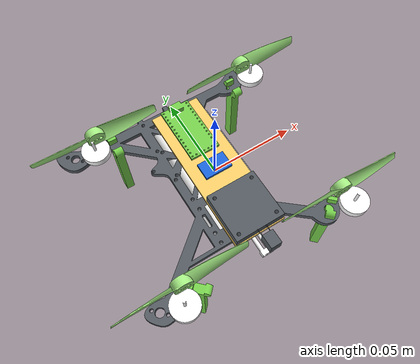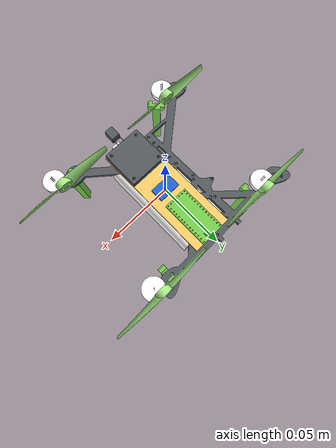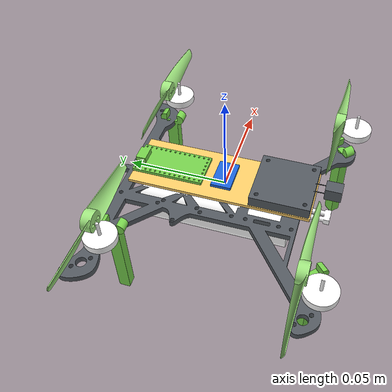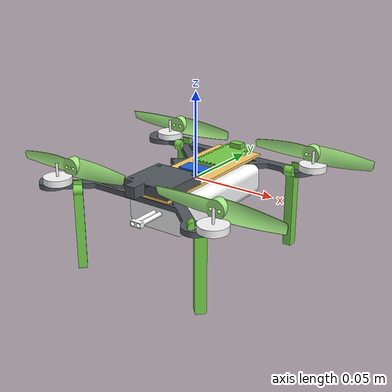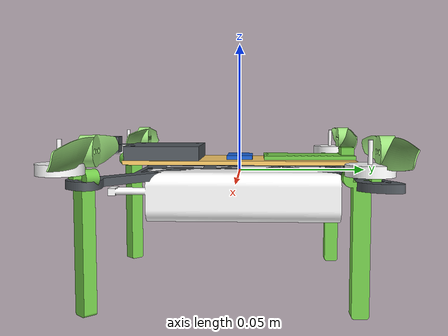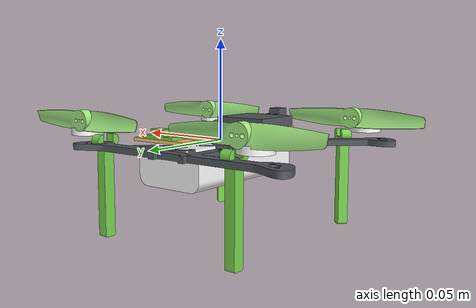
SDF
<?xml version="1.0" ?>
<sdf version='1.11'>
  <model name='drone'>
    <pose>0 0 0 0 0 0</pose>
    <link name='base_link'>
      <inertial>
        <pose frame="">0 0 0 0 0 0</pose>
        <mass>0.2034</mass>
        <inertia>
          <ixx>0.000016572*8.136</ixx>
          <ixy>0.00</ixy>
          <ixz>0.00</ixz>
          <iyy>0.000016656*8.136</iyy>
          <iyz>0.00000</iyz>
          <izz>0.000029262*8.136</izz>        i
        </inertia>
      </inertial>
      <collision name='base_link_collision'>
        <pose>0.040281999999999998 -0.0559978 -0.047511600000000001 1.5708 0 -2.3561899999999998</pose>
        <geometry>
          <mesh>
            <scale>1 1 1</scale>
            <uri>model://f_drone/assets/leg.stl</uri>
          </mesh>
        </geometry>
      </collision>
      <collision name='base_link_collision_3'>
        <pose>-0.037908999999999998 0.038994099999999997 -0.047511600000000001 1.5708 5.5511151231257827e-17 -1.5708</pose>
        <geometry>
          <mesh>
            <scale>1 1 1</scale>
            <uri>model://f_drone/assets/leg.stl</uri>
          </mesh>
        </geometry>
      </collision>
      <collision name='base_link_collision_5'>
        <pose>0.036496199999999999 0.044994100000000002 -0.047511600000000001 1.5708 -5.5511151231257827e-17 1.5708</pose>
        <geometry>
          <mesh>
            <scale>1 1 1</scale>
            <uri>model://f_drone/assets/leg.stl</uri>
          </mesh>
        </geometry>
      </collision>
      <collision name='base_link_collision_8'>
        <pose>-0.011815300000000001 -0.00082253299999999997 0 0 0 0</pose>
        <geometry>
          <box>
            <size>0.1029 0.09925 0.03</size>
          </box>
        </geometry>
      </collision>
      <collision name='base_link_collision_11'>
        <pose>-0.037236999999999999 -0.052462300000000003 -0.047511600000000001 1.5708 -2.2204460492503131e-16 -0.78539800000000004</pose>
        <geometry>
          <mesh>
            <scale>1 1 1</scale>
            <uri>model://f_drone/assets/leg.stl</uri>
          </mesh>
        </geometry>
      </collision>
      <visual name='base_link_visual'>
        <pose>0.040281999999999998 -0.0559978 -0.047511600000000001 1.5708 0 -2.3561899999999998</pose>
        <geometry>
          <mesh>
            <scale>1 1 1</scale>
            <uri>model://f_drone/assets/leg.stl</uri>
          </mesh>
        </geometry>
        <material>
          <diffuse>0.465686262 0.818627477 0.299019992 1</diffuse>
          <ambient>0.465686262 0.818627477 0.299019992 1</ambient>
        </material>
      </visual>
      <visual name='base_link_visual_1'>
        <pose>4.7435499999999997e-06 0.0015624899999999999 -0.019 0 0 0</pose>
        <geometry>
          <mesh>
            <scale>1 1 1</scale>
            <uri>model://f_drone/assets/2s_battery.stl</uri>
          </mesh>
        </geometry>
        <material>
          <diffuse>1 1 1 1</diffuse>
          <ambient>1 1 1 1</ambient>
        </material>
      </visual>
      <visual name='base_link_visual_2'>
        <pose>-0.051445299999999999 -0.0566416 0.0030000000000000001 0 0 0</pose>
        <geometry>
          <mesh>
            <scale>1 1 1</scale>
            <uri>model://f_drone/assets/motor.stl</uri>
          </mesh>
        </geometry>
        <material>
          <diffuse>1 1 1 1</diffuse>
          <ambient>1 1 1 1</ambient>
        </material>
      </visual>
      <visual name='base_link_visual_3'>
        <pose>-0.037908999999999998 0.038994099999999997 -0.047511600000000001 1.5708 5.5511151231257827e-17 -1.5708</pose>
        <geometry>
          <mesh>
            <scale>1 1 1</scale>
            <uri>model://f_drone/assets/leg.stl</uri>
          </mesh>
        </geometry>
        <material>
          <diffuse>0.465686262 0.818627477 0.299019992 1</diffuse>
          <ambient>0.465686262 0.818627477 0.299019992 1</ambient>
        </material>
      </visual>
      <visual name='base_link_visual_4'>
        <pose>4.7435499999999997e-06 0.027497000000000001 0.0045500000000000002 0 0 0</pose>
        <geometry>
          <mesh>
            <scale>1 1 1</scale>
            <uri>model://f_drone/assets/mcu.stl</uri>
          </mesh>
        </geometry>
        <material>
          <diffuse>0.465686262 0.818627477 0.299019992 1</diffuse>
          <ambient>0.465686262 0.818627477 0.299019992 1</ambient>
        </material>
      </visual>
      <visual name='base_link_visual_5'>
        <pose>0.036496199999999999 0.044994100000000002 -0.047511600000000001 1.5708 -5.5511151231257827e-17 1.5708</pose>
        <geometry>
          <mesh>
            <scale>1 1 1</scale>
            <uri>model://f_drone/assets/leg.stl</uri>
          </mesh>
        </geometry>
        <material>
          <diffuse>0.465686262 0.818627477 0.299019992 1</diffuse>
          <ambient>0.465686262 0.818627477 0.299019992 1</ambient>
        </material>
      </visual>
      <visual name='base_link_visual_6'>
        <pose>4.7435499999999997e-06 0.000103915 0.0045500000000000002 0 0 0</pose>
        <geometry>
          <mesh>
            <scale>1 1 1</scale>
            <uri>model://f_drone/assets/imu.stl</uri>
          </mesh>
        </geometry>
        <material>
          <diffuse>0.107843123 0.397058755 0.862744987 1</diffuse>
          <ambient>0.107843123 0.397058755 0.862744987 1</ambient>
        </material>
      </visual>
      <visual name='base_link_visual_7'>
        <pose>0.051454699999999999 0.042608399999999998 0.0030000000000000001 0 0 0</pose>
        <geometry>
          <mesh>
            <scale>1 1 1</scale>
            <uri>model://f_drone/assets/motor.stl</uri>
          </mesh>
        </geometry>
        <material>
          <diffuse>1 1 1 1</diffuse>
          <ambient>1 1 1 1</ambient>
        </material>
      </visual>
      <visual name='base_link_visual_8'>
        <pose>-0.011815300000000001 -0.00082253299999999997 0 0 0 0</pose>
        <geometry>
          <mesh>
            <scale>1 1 1</scale>
            <uri>model://f_drone/assets/base_link.stl</uri>
          </mesh>
        </geometry>
        <material>
          <diffuse>0.328431249 0.352941275 0.377451241 1</diffuse>
          <ambient>0.328431249 0.352941275 0.377451241 1</ambient>
        </material>
      </visual>
      <visual name='base_link_visual_9'>
        <pose>4.7435499999999997e-06 0.000103915 0.00298 0 0 0</pose>
        <geometry>
          <mesh>
            <scale>1 1 1</scale>
            <uri>model://f_drone/assets/custom_pcb.stl</uri>
          </mesh>
        </geometry>
        <material>
          <diffuse>1 0.808823764 0.411765009 1</diffuse>
          <ambient>1 0.808823764 0.411765009 1</ambient>
        </material>
      </visual>
      <visual name='base_link_visual_10'>
        <pose>-0.051445299999999999 0.042608399999999998 0.0030000000000000001 0 0 0</pose>
        <geometry>
          <mesh>
            <scale>1 1 1</scale>
            <uri>model://f_drone/assets/motor.stl</uri>
          </mesh>
        </geometry>
        <material>
          <diffuse>1 1 1 1</diffuse>
          <ambient>1 1 1 1</ambient>
        </material>
      </visual>
      <visual name='base_link_visual_11'>
        <pose>-0.037236999999999999 -0.052462300000000003 -0.047511600000000001 1.5708 -2.2204460492503131e-16 -0.78539800000000004</pose>
        <geometry>
          <mesh>
            <scale>1 1 1</scale>
            <uri>model://f_drone/assets/leg.stl</uri>
          </mesh>
        </geometry>
        <material>
          <diffuse>0.465686262 0.818627477 0.299019992 1</diffuse>
          <ambient>0.465686262 0.818627477 0.299019992 1</ambient>
        </material>
      </visual>
      <visual name='base_link_visual_12'>
        <pose>0.051454699999999999 -0.0566416 0.0030000000000000001 0 0 0</pose>
        <geometry>
          <mesh>
            <scale>1 1 1</scale>
            <uri>model://f_drone/assets/motor.stl</uri>
          </mesh>
        </geometry>
        <material>
          <diffuse>1 1 1 1</diffuse>
          <ambient>1 1 1 1</ambient>
        </material>
      </visual>
      <visual name='base_link_visual_13'>
        <pose>4.7435499999999997e-06 -0.029896099999999998 0.0045500000000000002 0 0 0</pose>
        <geometry>
          <mesh>
            <scale>1 1 1</scale>
            <uri>model://f_drone/assets/esc.stl</uri>
          </mesh>
        </geometry>
        <material>
          <diffuse>0.328431249 0.352941275 0.377451241 1</diffuse>
          <ambient>0.328431249 0.352941275 0.377451241 1</ambient>
        </material>
      </visual>
      <!-- IMU in the middle of drone-->
      <sensor name="imu_sensor" type="imu">
        <pose>0 0 0 0 0 0</pose>
        <always_on>1</always_on>
        <update_rate>1000</update_rate>
        <visualize>true</visualize>
        <topic>imu</topic>
        <imu>
          <orientation_reference_frame>
            <localization>NWU</localization>
            <custom_rpy>0 0 0</custom_rpy>
            <grav_dir_x>1 0 0</grav_dir_x>
          </orientation_reference_frame>
          <enable_orientation>true</enable_orientation>
        </imu>
      </sensor>
      <!-- Rangefinder at end of drone-->
      <sensor name='optical_flow' type='gpu_lidar'>"
          <pose relative_to='base_link'>0 0.055 -0.0045 0 1.5708 -1.5708</pose>
          <topic>radar</topic>
          <enable_metrics>false</enable_metrics>
          <update_rate>100</update_rate>
          <ray>
              <scan>
                  <horizontal>
                      <samples>10</samples>
                      <resolution>1</resolution>
                      <min_angle>-0.2186</min_angle>
                      <max_angle>0.2186</max_angle>
                  </horizontal>
                  <vertical>
                      <samples>1</samples>
                      <resolution>0.01</resolution>
                      <min_angle>0</min_angle>
                      <max_angle>0</max_angle>
                  </vertical>
              </scan>
              <range>
                <min>0.01</min>
                <max>2.0</max>
                <resolution>0.01</resolution>
              </range>
          </ray>
          <always_on>1</always_on>
          <visualize>true</visualize>
      </sensor>
    </link>
    <joint name='motor_prop_1' type='revolute'>
      <parent>base_link</parent>
      <child>prop</child>
      <axis>
        <xyz>0 0 1</xyz>
        <limit>
          <lower>-1e+16</lower>
          <upper>1e+16</upper>
          <effort>10</effort>
          <velocity>600</velocity>
        </limit>
        <dynamics>
          <spring_reference>0</spring_reference>
          <spring_stiffness>0</spring_stiffness>
        </dynamics>
        <use_parent_model_frame>1</use_parent_model_frame>
      </axis>
    </joint>
    <link name='prop'>
      <pose frame="">-0.048 0.048 0.0105 0 0 0</pose>
      <inertial>
        <pose>0 0 0 0 0 0</pose>
        <mass>0.0007</mass>
        <inertia>
          <ixx>0.000000002*61.25</ixx>
          <iyy>0.000000167*61.25</iyy>
          <izz>0.000000168*61.25</izz>
          <ixy>0</ixy>
          <ixz>0</ixz>
          <iyz>0</iyz>>
        </inertia>
      </inertial>
      <collision name='prop_collision'>
        <pose>0 0 0 3.1415899999999999 0 0</pose>
        <geometry>
          <cylinder>
            <length>0.005</length>
            <radius>0.0381</radius>
          </cylinder>
        </geometry>
      </collision>
      <visual name='prop_visual'>
        <pose>0 0 0 3.1415899999999999 0 0</pose>
        <geometry>
          <mesh>
            <scale>1 1 1</scale>
            <uri>model://f_drone/assets/prop.stl</uri>
          </mesh>
        </geometry>
        <material>
          <diffuse>0.642156243 0.921568751 0.509803772 1</diffuse>
          <ambient>0.642156243 0.921568751 0.509803772 1</ambient>
        </material>
      </visual>
    </link>
    <joint name='motor_prop_2' type='revolute'>
      <parent>base_link</parent>
      <child>prop_2</child>
      <axis>
        <xyz>0 0 1</xyz>
        <limit>
          <lower>-1e+16</lower>
          <upper>1e+16</upper>
          <effort>10</effort>
          <velocity>600</velocity>
        </limit>
        <dynamics>
          <spring_reference>0</spring_reference>
          <spring_stiffness>0</spring_stiffness>
        </dynamics>
        <use_parent_model_frame>1</use_parent_model_frame>
      </axis>
    </joint>
    <link name='prop_2'>
      <pose frame="">-0.048 -0.048 0.0105 0 0 0</pose>
      <inertial>
        <pose>0 0 0 0 0 0</pose>
        <mass>0.0007</mass>
        <inertia>
          <ixx>0.000000002*61.25</ixx>
          <iyy>0.000000167*61.25</iyy>
          <izz>0.000000168*61.25</izz>
          <ixy>0</ixy>
          <ixz>0</ixz>
          <iyz>0</iyz>>
        </inertia>
      </inertial>
      <collision name='prop_2_collision'>
        <pose>0 0 0 0 0 0</pose>
        <geometry>
          <cylinder>
            <length>0.005</length>
            <radius>0.0381</radius>
          </cylinder>
        </geometry>
      </collision>
      <visual name='prop_2_visual'>
        <pose>0 0 0 0 0 0</pose>
        <geometry>
          <mesh>
            <scale>1 1 1</scale>
            <uri>model://f_drone/assets/prop.stl</uri>
          </mesh>
        </geometry>
        <material>
          <diffuse>0.642156243 0.921568751 0.509803772 1</diffuse>
          <ambient>0.642156243 0.921568751 0.509803772 1</ambient>
        </material>
      </visual>
    </link>
    <joint name='motor_prop_3' type='revolute'>
      <parent>base_link</parent>
      <child>prop_3</child>
      <axis>
        <xyz>0 0 1</xyz>
        <limit>
          <lower>-1e+16</lower>
          <upper>1e+16</upper>
          <effort>10</effort>
          <velocity>600</velocity>
        </limit>
        <dynamics>
          <spring_reference>0</spring_reference>
          <spring_stiffness>0</spring_stiffness>
        </dynamics>
        <use_parent_model_frame>1</use_parent_model_frame>
      </axis>
    </joint>
    <link name='prop_3'>
      <pose frame="">0.048 0.048 0.0105 0 0 0</pose>
      <inertial>
        <pose>0 0 0 0 0 0</pose>
        <mass>0.0007</mass>
        <inertia>
          <ixx>0.000000002*61.25</ixx>
          <iyy>0.000000167*61.25</iyy>
          <izz>0.000000168*61.25</izz>
          <ixy>0</ixy>
          <ixz>0</ixz>
          <iyz>0</iyz>>
        </inertia>
      </inertial>
      <collision name='prop_3_collision'>
        <pose>0 0 0 0 0 0</pose>
        <geometry>
          <cylinder>
            <length>0.005</length>
            <radius>0.0381</radius>
          </cylinder>
        </geometry>
      </collision>
      <visual name='prop_3_visual'>
        <pose>0 0 0 0 0 0</pose>
        <geometry>
          <mesh>
            <scale>1 1 1</scale>
            <uri>model://f_drone/assets/prop.stl</uri>
          </mesh>
        </geometry>
        <material>
          <diffuse>0.642156243 0.921568751 0.509803772 1</diffuse>
          <ambient>0.642156243 0.921568751 0.509803772 1</ambient>
        </material>
      </visual>
    </link>
    <joint name='motor_prop_4' type='revolute'>
      <parent>base_link</parent>
      <child>prop_4</child>
      <axis>
        <xyz>0 0 1</xyz>
        <limit>
          <lower>-1e+16</lower>
          <upper>1e+16</upper>
          <effort>10</effort>
          <velocity>600</velocity>
        </limit>
        <dynamics>
          <spring_reference>0</spring_reference>
          <spring_stiffness>0</spring_stiffness>
        </dynamics>
        <use_parent_model_frame>1</use_parent_model_frame>
      </axis>
    </joint>
    <link name='prop_4'>
      <pose frame="">0.048 -0.048 0.0105 0 0 0</pose>
      <inertial>
        <pose>0 0 0 0 0 0</pose>
        <mass>0.0007</mass>
        <inertia>
          <ixx>0.000000002*61.25</ixx>
          <iyy>0.000000167*61.25</iyy>
          <izz>0.000000168*61.25</izz>
          <ixy>0</ixy>
          <ixz>0</ixz>
          <iyz>0</iyz>>
        </inertia>
      </inertial>
      <collision name='prop_4_collision'>
        <pose>0 0 0 3.1415899999999999 0 0</pose>
        <geometry>
          <cylinder>
            <length>0.005</length>
            <radius>0.0381</radius>
          </cylinder>
        </geometry>
      </collision>
      <visual name='prop_4_visual'>
        <pose>0 0 0 3.1415899999999999 0 0</pose>
        <geometry>
          <mesh>
            <scale>1 1 1</scale>
            <uri>model://f_drone/assets/prop.stl</uri>
          </mesh>
        </geometry>
        <material>
          <diffuse>0.642156243 0.921568751 0.509803772 1</diffuse>
          <ambient>0.642156243 0.921568751 0.509803772 1</ambient>
        </material>
      </visual>
    </link>

    <!-- All necessary plugins to interface with external drone -->
      <plugin
        filename="gz-sim-imu-system"
        name="gz::sim::systems::Imu">
      </plugin>

      <plugin
        filename="gz-sim-sensors-system"
        name="gz::sim::systems::Sensors">
        <render_engine>ogre2</render_engine>
        <disable_on_drained_battery>false</disable_on_drained_battery>
      </plugin>

      <plugin filename="gz-sim-linearbatteryplugin-system"
        name="gz::sim::systems::LinearBatteryPlugin">
        <!--Li-ion battery spec from GAONENG 2S 18650 datasheet * Linked in Hardware -->
        <battery_name>2s_battery</battery_name>
        <voltage>8.4</voltage>
        <open_circuit_voltage_constant_coef>8.4</open_circuit_voltage_constant_coef>
        <open_circuit_voltage_linear_coef>-2.0</open_circuit_voltage_linear_coef>
        <initial_charge>3.0</initial_charge>
        <capacity>3.0 </capacity>
        <resistance>0.07</resistance>
        <smooth_current_tau>2.0</smooth_current_tau>
        <enable_recharge>false</enable_recharge>
        <charging_time>3.0</charging_time>
        <soc_threshold>0.51</soc_threshold>
        <!-- Consumer-specific -->
        <power_load>2.1</power_load>
        <start_on_motion>true</start_on_motion>
      </plugin>

    <!-- Need to output state for all the joints and links -->
      <plugin
        filename="gz-sim-joint-state-publisher-system"
        name="gz::sim::systems::JointStatePublisher">
        <joint_name>motor_prop_1</joint_name>
        <joint_name>motor_prop_2</joint_name>
        <joint_name>motor_prop_3</joint_name>
        <joint_name>motor_prop_4</joint_name>
      </plugin>

      <plugin
        filename="gz-sim-pose-publisher-system"
        name="gz::sim::systems::PosePublisher">
        <publish_link_pose>true</publish_link_pose>
        <use_pose_vector_msg>true</use_pose_vector_msg>
        <static_publisher>false</static_publisher>
        <static_update_frequency>1</static_update_frequency>
      </plugin>

      <plugin
        filename="gz-sim-odometry-publisher-system"
        name="gz::sim::systems::OdometryPublisher">
        <odom_frame>odom</odom_frame>
        <robot_base_frame>base_link</robot_base_frame>
      </plugin>

    <!-- Turn on when ready for Teensy reaction -->
      <plugin
        filename="DroneSerial"
        name="f_drone_gazebo::DroneSerial">
          <port>/dev/ttyACM0</port>
          <imu_link>base_link</imu_link>
          <rangefinder_link>base_link</rangefinder_link>
      </plugin>

    <!-- Send Actuator Velocities (mapped from PWM in our case)
      gz topic -t /drone/gazebo/command/motor_speed -m gz.msgs.Actuators -p 'velocity:[250, 250, 250, 250]'
    -->
      <plugin
        filename="gz-sim-multicopter-motor-model-system"
        name="gz::sim::systems::MulticopterMotorModel">
        <robotNamespace>drone</robotNamespace>
        <jointName>motor_prop_1</jointName>
        <linkName>prop</linkName>
        <turningDirection>cw</turningDirection>
        <timeConstantUp>0.0125</timeConstantUp>
        <timeConstantDown>0.025</timeConstantDown>
        <maxRotVelocity>600.0</maxRotVelocity>
        <motorConstant>8.54858e-06</motorConstant>
        <momentConstant>0.05</momentConstant>
        <commandSubTopic>gazebo/command/motor_speed</commandSubTopic>
        <actuator_number>0</actuator_number>
        <rotorDragCoefficient>8.06428e-05</rotorDragCoefficient>
        <rollingMomentCoefficient>1e-06</rollingMomentCoefficient>
        <motorSpeedPubTopic>motor_speed/0</motorSpeedPubTopic>
        <rotorVelocitySlowdownSim>10</rotorVelocitySlowdownSim>
        <motorType>velocity</motorType>
      </plugin>
      <plugin
        filename="gz-sim-multicopter-motor-model-system"
        name="gz::sim::systems::MulticopterMotorModel">
        <robotNamespace>drone</robotNamespace>
        <jointName>motor_prop_2</jointName>
        <linkName>prop_2</linkName>
        <turningDirection>ccw</turningDirection>
        <timeConstantUp>0.0125</timeConstantUp>
        <timeConstantDown>0.025</timeConstantDown>
        <maxRotVelocity>600.0</maxRotVelocity>
        <motorConstant>8.54858e-06</motorConstant>
        <momentConstant>0.05</momentConstant>
        <commandSubTopic>gazebo/command/motor_speed</commandSubTopic>
        <actuator_number>1</actuator_number>
        <rotorDragCoefficient>8.06428e-05</rotorDragCoefficient>
        <rollingMomentCoefficient>1e-06</rollingMomentCoefficient>
        <motorSpeedPubTopic>motor_speed/1</motorSpeedPubTopic>
        <rotorVelocitySlowdownSim>10</rotorVelocitySlowdownSim>
        <motorType>velocity</motorType>
      </plugin>
      <plugin
        filename="gz-sim-multicopter-motor-model-system"
        name="gz::sim::systems::MulticopterMotorModel">
        <robotNamespace>drone</robotNamespace>
        <jointName>motor_prop_3</jointName>
        <linkName>prop_3</linkName>
        <turningDirection>ccw</turningDirection>
        <timeConstantUp>0.0125</timeConstantUp>
        <timeConstantDown>0.025</timeConstantDown>
        <maxRotVelocity>600.0</maxRotVelocity>
        <motorConstant>8.54858e-06</motorConstant>
        <momentConstant>0.05</momentConstant>
        <commandSubTopic>gazebo/command/motor_speed</commandSubTopic>
        <actuator_number>2</actuator_number>
        <rotorDragCoefficient>8.06428e-05</rotorDragCoefficient>
        <rollingMomentCoefficient>1e-06</rollingMomentCoefficient>
        <motorSpeedPubTopic>motor_speed/2</motorSpeedPubTopic>
        <rotorVelocitySlowdownSim>10</rotorVelocitySlowdownSim>
        <motorType>velocity</motorType>
      </plugin>
      <plugin
        filename="gz-sim-multicopter-motor-model-system"
        name="gz::sim::systems::MulticopterMotorModel">
        <robotNamespace>drone</robotNamespace>
        <jointName>motor_prop_4</jointName>
        <linkName>prop_4</linkName>
        <turningDirection>cw</turningDirection>
        <timeConstantUp>0.0125</timeConstantUp>
        <timeConstantDown>0.025</timeConstantDown>
        <maxRotVelocity>600.0</maxRotVelocity>
        <motorConstant>8.54858e-06</motorConstant>
        <momentConstant>0.05</momentConstant>
        <commandSubTopic>gazebo/command/motor_speed</commandSubTopic>
        <actuator_number>3</actuator_number>
        <rotorDragCoefficient>8.06428e-05</rotorDragCoefficient>
        <rollingMomentCoefficient>1e-06</rollingMomentCoefficient>
        <motorSpeedPubTopic>motor_speed/3</motorSpeedPubTopic>
        <rotorVelocitySlowdownSim>10</rotorVelocitySlowdownSim>
        <motorType>velocity</motorType>
      </plugin>
  </model>
</sdf>
